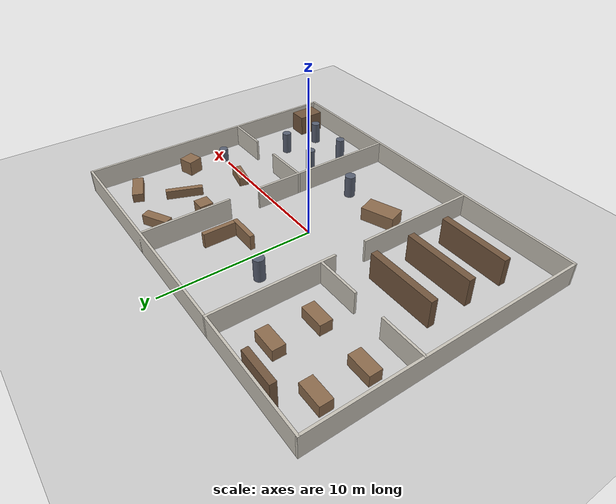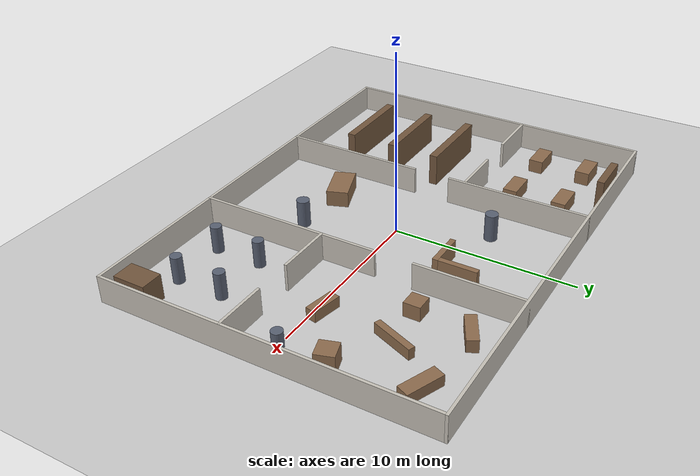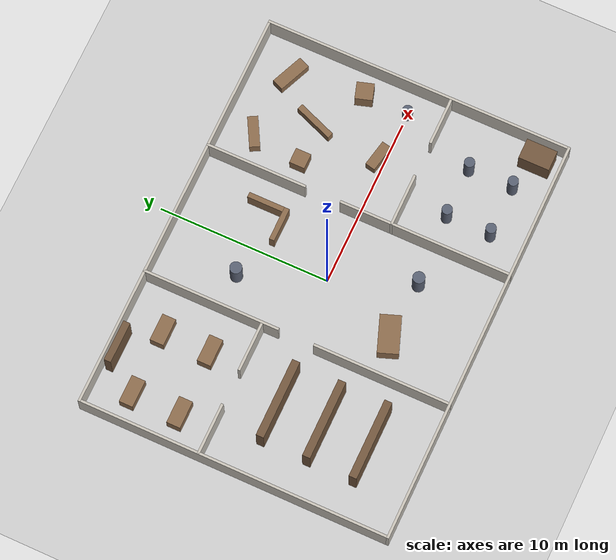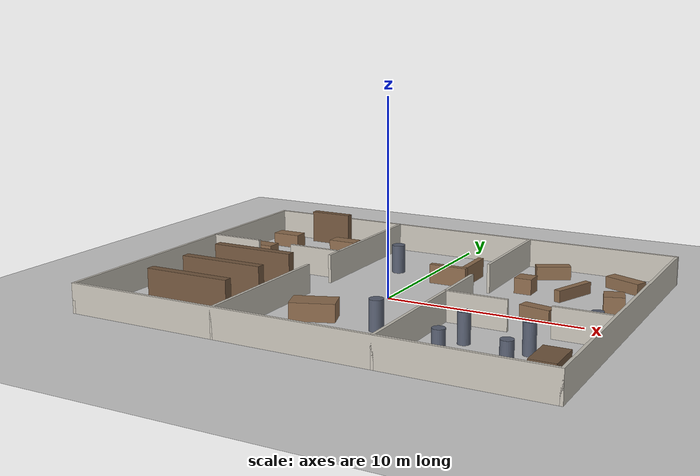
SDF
<?xml version="1.0"?>
<!-- Formato SDF (el de Gazebo para mundos). Mapa de la arena con recorrido sugerido:
     andesrobot_arena.png en esta misma carpeta. Coordenadas en metros; (0,0) = centro. -->
<sdf version="1.6">
  <world name="andesrobot_arena">
    <!-- Luz y suelo: modelos que trae Gazebo. -->
    <include><uri>model://sun</uri></include>
    <include><uri>model://ground_plane</uri></include>
    <!-- Motor de física ODE: pasos de 1 ms, 1000 pasos por segundo = tiempo real (factor 1). -->
    <physics type="ode">
      <max_step_size>0.001</max_step_size>
      <real_time_factor>1.0</real_time_factor>
      <real_time_update_rate>1000</real_time_update_rate>
      <ode><solver><type>quick</type><iters>200</iters></solver></ode>
    </physics>
    <!-- Sin sombras (más liviano para la GPU). -->
    <scene><shadows>false</shadows></scene>
    <!-- Cámara inicial de la ventana de Gazebo: arriba y al sur, mirando la arena entera. -->
    <gui><camera name="user_camera"><pose>0 -20 22 0 0.85 1.5708</pose></camera></gui>
    <!-- MUROS (1.5 m de alto, 15 cm de grosor). 00-03 = perímetro de 24 x 18 m; el resto divide las zonas
         dejando puertas de 2.2 m. -->
    <model name="muro_00">
      <static>true</static>
      <pose>0.000 -9.000 0.750 0 0 0.0000</pose>
      <link name="link">
        <collision name="collision"><geometry><box><size>24.150 0.15 1.5</size></box></geometry></collision>
        <visual name="visual"><geometry><box><size>24.150 0.15 1.5</size></box></geometry>
          <material><ambient>0.78 0.76 0.72 1</ambient><diffuse>0.78 0.76 0.72 1</diffuse></material></visual>
      </link>
    </model>
    <model name="muro_01">
      <static>true</static>
      <pose>0.000 9.000 0.750 0 0 0.0000</pose>
      <link name="link">
        <collision name="collision"><geometry><box><size>24.150 0.15 1.5</size></box></geometry></collision>
        <visual name="visual"><geometry><box><size>24.150 0.15 1.5</size></box></geometry>
          <material><ambient>0.78 0.76 0.72 1</ambient><diffuse>0.78 0.76 0.72 1</diffuse></material></visual>
      </link>
    </model>
    <model name="muro_02">
      <static>true</static>
      <pose>-12.000 0.000 0.750 0 0 1.5708</pose>
      <link name="link">
        <collision name="collision"><geometry><box><size>18.150 0.15 1.5</size></box></geometry></collision>
        <visual name="visual"><geometry><box><size>18.150 0.15 1.5</size></box></geometry>
          <material><ambient>0.78 0.76 0.72 1</ambient><diffuse>0.78 0.76 0.72 1</diffuse></material></visual>
      </link>
    </model>
    <model name="muro_03">
      <static>true</static>
      <pose>12.000 0.000 0.750 0 0 1.5708</pose>
      <link name="link">
        <collision name="collision"><geometry><box><size>18.150 0.15 1.5</size></box></geometry></collision>
        <visual name="visual"><geometry><box><size>18.150 0.15 1.5</size></box></geometry>
          <material><ambient>0.78 0.76 0.72 1</ambient><diffuse>0.78 0.76 0.72 1</diffuse></material></visual>
      </link>
    </model>
    <model name="muro_04">
      <static>true</static>
      <pose>-4.000 -5.050 0.750 0 0 1.5708</pose>
      <link name="link">
        <collision name="collision"><geometry><box><size>8.050 0.15 1.5</size></box></geometry></collision>
        <visual name="visual"><geometry><box><size>8.050 0.15 1.5</size></box></geometry>
          <material><ambient>0.78 0.76 0.72 1</ambient><diffuse>0.78 0.76 0.72 1</diffuse></material></visual>
      </link>
    </model>
    <model name="muro_05">
      <static>true</static>
      <pose>-4.000 5.050 0.750 0 0 1.5708</pose>
      <link name="link">
        <collision name="collision"><geometry><box><size>8.050 0.15 1.5</size></box></geometry></collision>
        <visual name="visual"><geometry><box><size>8.050 0.15 1.5</size></box></geometry>
          <material><ambient>0.78 0.76 0.72 1</ambient><diffuse>0.78 0.76 0.72 1</diffuse></material></visual>
      </link>
    </model>
    <model name="muro_06">
      <static>true</static>
      <pose>-10.550 2.000 0.750 0 0 0.0000</pose>
      <link name="link">
        <collision name="collision"><geometry><box><size>3.050 0.15 1.5</size></box></geometry></collision>
        <visual name="visual"><geometry><box><size>3.050 0.15 1.5</size></box></geometry>
          <material><ambient>0.78 0.76 0.72 1</ambient><diffuse>0.78 0.76 0.72 1</diffuse></material></visual>
      </link>
    </model>
    <model name="muro_07">
      <static>true</static>
      <pose>-5.450 2.000 0.750 0 0 0.0000</pose>
      <link name="link">
        <collision name="collision"><geometry><box><size>3.050 0.15 1.5</size></box></geometry></collision>
        <visual name="visual"><geometry><box><size>3.050 0.15 1.5</size></box></geometry>
          <material><ambient>0.78 0.76 0.72 1</ambient><diffuse>0.78 0.76 0.72 1</diffuse></material></visual>
      </link>
    </model>
    <model name="muro_08">
      <static>true</static>
      <pose>4.000 6.100 0.750 0 0 -1.5708</pose>
      <link name="link">
        <collision name="collision"><geometry><box><size>5.950 0.15 1.5</size></box></geometry></collision>
        <visual name="visual"><geometry><box><size>5.950 0.15 1.5</size></box></geometry>
          <material><ambient>0.78 0.76 0.72 1</ambient><diffuse>0.78 0.76 0.72 1</diffuse></material></visual>
      </link>
    </model>
    <model name="muro_09">
      <static>true</static>
      <pose>4.000 -4.000 0.750 0 0 -1.5708</pose>
      <link name="link">
        <collision name="collision"><geometry><box><size>10.150 0.15 1.5</size></box></geometry></collision>
        <visual name="visual"><geometry><box><size>10.150 0.15 1.5</size></box></geometry>
          <material><ambient>0.78 0.76 0.72 1</ambient><diffuse>0.78 0.76 0.72 1</diffuse></material></visual>
      </link>
    </model>
    <model name="muro_10">
      <static>true</static>
      <pose>5.500 -2.000 0.750 0 0 0.0000</pose>
      <link name="link">
        <collision name="collision"><geometry><box><size>3.150 0.15 1.5</size></box></geometry></collision>
        <visual name="visual"><geometry><box><size>3.150 0.15 1.5</size></box></geometry>
          <material><ambient>0.78 0.76 0.72 1</ambient><diffuse>0.78 0.76 0.72 1</diffuse></material></visual>
      </link>
    </model>
    <model name="muro_11">
      <static>true</static>
      <pose>10.600 -2.000 0.750 0 0 0.0000</pose>
      <link name="link">
        <collision name="collision"><geometry><box><size>2.950 0.15 1.5</size></box></geometry></collision>
        <visual name="visual"><geometry><box><size>2.950 0.15 1.5</size></box></geometry>
          <material><ambient>0.78 0.76 0.72 1</ambient><diffuse>0.78 0.76 0.72 1</diffuse></material></visual>
      </link>
    </model>
    <!-- HALL CENTRAL (x de -4 a 4): 2 pilares, una barrera en L y un auto volcado. -->
    <model name="pilar_hall_1">
      <static>true</static>
      <pose>-1.800 4.600 0.750 0 0 0.0000</pose>
      <link name="link">
        <collision name="collision"><geometry><cylinder><radius>0.35</radius><length>1.5</length></cylinder></geometry></collision>
        <visual name="visual"><geometry><cylinder><radius>0.35</radius><length>1.5</length></cylinder></geometry>
          <material><ambient>0.35 0.38 0.45 1</ambient><diffuse>0.35 0.38 0.45 1</diffuse></material></visual>
      </link>
    </model>
    <model name="pilar_hall_2">
      <static>true</static>
      <pose>1.800 -4.600 0.750 0 0 0.0000</pose>
      <link name="link">
        <collision name="collision"><geometry><cylinder><radius>0.35</radius><length>1.5</length></cylinder></geometry></collision>
        <visual name="visual"><geometry><cylinder><radius>0.35</radius><length>1.5</length></cylinder></geometry>
          <material><ambient>0.35 0.38 0.45 1</ambient><diffuse>0.35 0.38 0.45 1</diffuse></material></visual>
      </link>
    </model>
    <model name="barrera_L_a">
      <static>true</static>
      <pose>1.600 3.600 0.500 0 0 0.0000</pose>
      <link name="link">
        <collision name="collision"><geometry><box><size>2.0 0.3 1.0</size></box></geometry></collision>
        <visual name="visual"><geometry><box><size>2.0 0.3 1.0</size></box></geometry>
          <material><ambient>0.55 0.42 0.30 1</ambient><diffuse>0.55 0.42 0.30 1</diffuse></material></visual>
      </link>
    </model>
    <model name="barrera_L_b">
      <static>true</static>
      <pose>2.450 4.800 0.500 0 0 0.0000</pose>
      <link name="link">
        <collision name="collision"><geometry><box><size>0.3 2.1 1.0</size></box></geometry></collision>
        <visual name="visual"><geometry><box><size>0.3 2.1 1.0</size></box></geometry>
          <material><ambient>0.55 0.42 0.30 1</ambient><diffuse>0.55 0.42 0.30 1</diffuse></material></visual>
      </link>
    </model>
    <model name="auto_volcado">
      <static>true</static>
      <pose>-1.600 -4.400 0.450 0 0 0.3500</pose>
      <link name="link">
        <collision name="collision"><geometry><box><size>2.2 1.2 0.9</size></box></geometry></collision>
        <visual name="visual"><geometry><box><size>2.2 1.2 0.9</size></box></geometry>
          <material><ambient>0.55 0.42 0.30 1</ambient><diffuse>0.55 0.42 0.30 1</diffuse></material></visual>
      </link>
    </model>
    <!-- OFICINA (arriba a la izquierda): 4 escritorios y un estante contra el muro. -->
    <model name="escritorio_1">
      <static>true</static>
      <pose>-10.200 6.800 0.375 0 0 0.0000</pose>
      <link name="link">
        <collision name="collision"><geometry><box><size>1.6 0.8 0.75</size></box></geometry></collision>
        <visual name="visual"><geometry><box><size>1.6 0.8 0.75</size></box></geometry>
          <material><ambient>0.55 0.42 0.30 1</ambient><diffuse>0.55 0.42 0.30 1</diffuse></material></visual>
      </link>
    </model>
    <model name="escritorio_2">
      <static>true</static>
      <pose>-6.400 6.800 0.375 0 0 0.0000</pose>
      <link name="link">
        <collision name="collision"><geometry><box><size>1.6 0.8 0.75</size></box></geometry></collision>
        <visual name="visual"><geometry><box><size>1.6 0.8 0.75</size></box></geometry>
          <material><ambient>0.55 0.42 0.30 1</ambient><diffuse>0.55 0.42 0.30 1</diffuse></material></visual>
      </link>
    </model>
    <model name="escritorio_3">
      <static>true</static>
      <pose>-10.200 4.000 0.375 0 0 0.0000</pose>
      <link name="link">
        <collision name="collision"><geometry><box><size>1.6 0.8 0.75</size></box></geometry></collision>
        <visual name="visual"><geometry><box><size>1.6 0.8 0.75</size></box></geometry>
          <material><ambient>0.55 0.42 0.30 1</ambient><diffuse>0.55 0.42 0.30 1</diffuse></material></visual>
      </link>
    </model>
    <model name="escritorio_4">
      <static>true</static>
      <pose>-6.400 4.000 0.375 0 0 0.0000</pose>
      <link name="link">
        <collision name="collision"><geometry><box><size>1.6 0.8 0.75</size></box></geometry></collision>
        <visual name="visual"><geometry><box><size>1.6 0.8 0.75</size></box></geometry>
          <material><ambient>0.55 0.42 0.30 1</ambient><diffuse>0.55 0.42 0.30 1</diffuse></material></visual>
      </link>
    </model>
    <model name="estante_oficina">
      <static>true</static>
      <pose>-8.300 8.550 0.900 0 0 0.0000</pose>
      <link name="link">
        <collision name="collision"><geometry><box><size>2.4 0.4 1.8</size></box></geometry></collision>
        <visual name="visual"><geometry><box><size>2.4 0.4 1.8</size></box></geometry>
          <material><ambient>0.45 0.34 0.24 1</ambient><diffuse>0.45 0.34 0.24 1</diffuse></material></visual>
      </link>
    </model>
    <!-- BODEGA (abajo a la izquierda): 3 filas de estantes de 1.8 m con pasillos de 2.3 m. -->
    <model name="estante_bodega_1">
      <static>true</static>
      <pose>-7.600 -0.600 0.900 0 0 0.0000</pose>
      <link name="link">
        <collision name="collision"><geometry><box><size>4.6 0.45 1.8</size></box></geometry></collision>
        <visual name="visual"><geometry><box><size>4.6 0.45 1.8</size></box></geometry>
          <material><ambient>0.45 0.34 0.24 1</ambient><diffuse>0.45 0.34 0.24 1</diffuse></material></visual>
      </link>
    </model>
    <model name="estante_bodega_2">
      <static>true</static>
      <pose>-7.600 -3.300 0.900 0 0 0.0000</pose>
      <link name="link">
        <collision name="collision"><geometry><box><size>4.6 0.45 1.8</size></box></geometry></collision>
        <visual name="visual"><geometry><box><size>4.6 0.45 1.8</size></box></geometry>
          <material><ambient>0.45 0.34 0.24 1</ambient><diffuse>0.45 0.34 0.24 1</diffuse></material></visual>
      </link>
    </model>
    <model name="estante_bodega_3">
      <static>true</static>
      <pose>-7.600 -6.000 0.900 0 0 0.0000</pose>
      <link name="link">
        <collision name="collision"><geometry><box><size>4.6 0.45 1.8</size></box></geometry></collision>
        <visual name="visual"><geometry><box><size>4.6 0.45 1.8</size></box></geometry>
          <material><ambient>0.45 0.34 0.24 1</ambient><diffuse>0.45 0.34 0.24 1</diffuse></material></visual>
      </link>
    </model>
    <!-- ZONA COLAPSADA (arriba a la derecha): losas, viga y bloques tirados en ángulo + un tambor. -->
    <model name="escombro_losa_1">
      <static>true</static>
      <pose>6.000 7.200 0.350 0 0 0.5000</pose>
      <link name="link">
        <collision name="collision"><geometry><box><size>1.8 0.6 0.7</size></box></geometry></collision>
        <visual name="visual"><geometry><box><size>1.8 0.6 0.7</size></box></geometry>
          <material><ambient>0.55 0.42 0.30 1</ambient><diffuse>0.55 0.42 0.30 1</diffuse></material></visual>
      </link>
    </model>
    <model name="escombro_losa_2">
      <static>true</static>
      <pose>10.000 6.800 0.300 0 0 -0.4000</pose>
      <link name="link">
        <collision name="collision"><geometry><box><size>2.0 0.7 0.6</size></box></geometry></collision>
        <visual name="visual"><geometry><box><size>2.0 0.7 0.6</size></box></geometry>
          <material><ambient>0.55 0.42 0.30 1</ambient><diffuse>0.55 0.42 0.30 1</diffuse></material></visual>
      </link>
    </model>
    <model name="escombro_viga_1">
      <static>true</static>
      <pose>8.000 4.400 0.300 0 0 1.2000</pose>
      <link name="link">
        <collision name="collision"><geometry><box><size>2.4 0.35 0.6</size></box></geometry></collision>
        <visual name="visual"><geometry><box><size>2.4 0.35 0.6</size></box></geometry>
          <material><ambient>0.55 0.42 0.30 1</ambient><diffuse>0.55 0.42 0.30 1</diffuse></material></visual>
      </link>
    </model>
    <model name="escombro_bloque_1">
      <static>true</static>
      <pose>5.600 4.200 0.400 0 0 0.0000</pose>
      <link name="link">
        <collision name="collision"><geometry><box><size>0.9 0.9 0.8</size></box></geometry></collision>
        <visual name="visual"><geometry><box><size>0.9 0.9 0.8</size></box></geometry>
          <material><ambient>0.55 0.42 0.30 1</ambient><diffuse>0.55 0.42 0.30 1</diffuse></material></visual>
      </link>
    </model>
    <model name="escombro_bloque_2">
      <static>true</static>
      <pose>10.600 2.600 0.500 0 0 0.3000</pose>
      <link name="link">
        <collision name="collision"><geometry><box><size>1.0 1.0 1.0</size></box></geometry></collision>
        <visual name="visual"><geometry><box><size>1.0 1.0 1.0</size></box></geometry>
          <material><ambient>0.55 0.42 0.30 1</ambient><diffuse>0.55 0.42 0.30 1</diffuse></material></visual>
      </link>
    </model>
    <model name="escombro_losa_3">
      <static>true</static>
      <pose>7.600 0.400 0.300 0 0 -0.2000</pose>
      <link name="link">
        <collision name="collision"><geometry><box><size>1.6 0.6 0.6</size></box></geometry></collision>
        <visual name="visual"><geometry><box><size>1.6 0.6 0.6</size></box></geometry>
          <material><ambient>0.55 0.42 0.30 1</ambient><diffuse>0.55 0.42 0.30 1</diffuse></material></visual>
      </link>
    </model>
    <model name="tambor_1">
      <static>true</static>
      <pose>10.600 0.000 0.450 0 0 0.0000</pose>
      <link name="link">
        <collision name="collision"><geometry><cylinder><radius>0.3</radius><length>0.9</length></cylinder></geometry></collision>
        <visual name="visual"><geometry><cylinder><radius>0.3</radius><length>0.9</length></cylinder></geometry>
          <material><ambient>0.35 0.38 0.45 1</ambient><diffuse>0.35 0.38 0.45 1</diffuse></material></visual>
      </link>
    </model>
    <!-- ZONA DE PILARES (abajo a la derecha): grilla de 4 columnas cada 3 m + un contenedor. -->
    <model name="pilar_00">
      <static>true</static>
      <pose>6.000 -4.400 0.750 0 0 0.0000</pose>
      <link name="link">
        <collision name="collision"><geometry><cylinder><radius>0.3</radius><length>1.5</length></cylinder></geometry></collision>
        <visual name="visual"><geometry><cylinder><radius>0.3</radius><length>1.5</length></cylinder></geometry>
          <material><ambient>0.35 0.38 0.45 1</ambient><diffuse>0.35 0.38 0.45 1</diffuse></material></visual>
      </link>
    </model>
    <model name="pilar_01">
      <static>true</static>
      <pose>6.000 -7.000 0.750 0 0 0.0000</pose>
      <link name="link">
        <collision name="collision"><geometry><cylinder><radius>0.3</radius><length>1.5</length></cylinder></geometry></collision>
        <visual name="visual"><geometry><cylinder><radius>0.3</radius><length>1.5</length></cylinder></geometry>
          <material><ambient>0.35 0.38 0.45 1</ambient><diffuse>0.35 0.38 0.45 1</diffuse></material></visual>
      </link>
    </model>
    <model name="pilar_10">
      <static>true</static>
      <pose>9.000 -4.400 0.750 0 0 0.0000</pose>
      <link name="link">
        <collision name="collision"><geometry><cylinder><radius>0.3</radius><length>1.5</length></cylinder></geometry></collision>
        <visual name="visual"><geometry><cylinder><radius>0.3</radius><length>1.5</length></cylinder></geometry>
          <material><ambient>0.35 0.38 0.45 1</ambient><diffuse>0.35 0.38 0.45 1</diffuse></material></visual>
      </link>
    </model>
    <model name="pilar_11">
      <static>true</static>
      <pose>9.000 -7.000 0.750 0 0 0.0000</pose>
      <link name="link">
        <collision name="collision"><geometry><cylinder><radius>0.3</radius><length>1.5</length></cylinder></geometry></collision>
        <visual name="visual"><geometry><cylinder><radius>0.3</radius><length>1.5</length></cylinder></geometry>
          <material><ambient>0.35 0.38 0.45 1</ambient><diffuse>0.35 0.38 0.45 1</diffuse></material></visual>
      </link>
    </model>
    <model name="contenedor">
      <static>true</static>
      <pose>11.000 -7.600 0.700 0 0 0.0000</pose>
      <link name="link">
        <collision name="collision"><geometry><box><size>1.2 1.8 1.4</size></box></geometry></collision>
        <visual name="visual"><geometry><box><size>1.2 1.8 1.4</size></box></geometry>
          <material><ambient>0.45 0.34 0.24 1</ambient><diffuse>0.45 0.34 0.24 1</diffuse></material></visual>
      </link>
    </model>
  </world>
</sdf>
